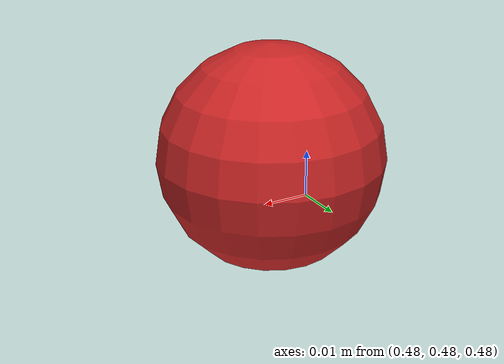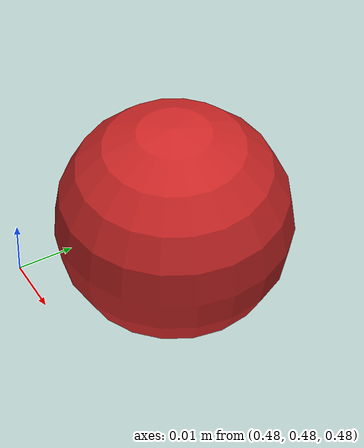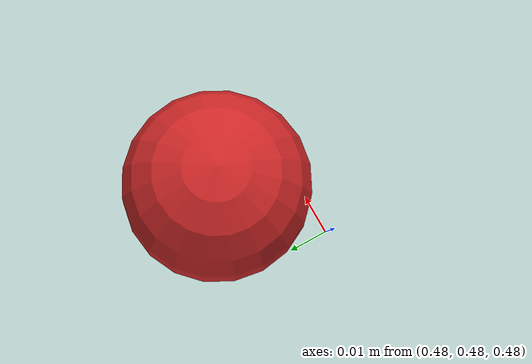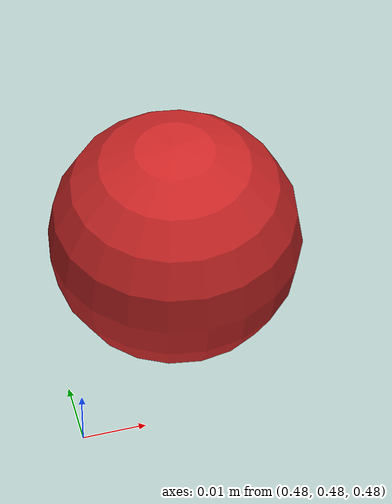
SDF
<?xml version="1.0"?>
<sdf version="1.6">
  <world name="tomato_world">
    <physics type="ode">
      <max_step_size>0.001</max_step_size>
      <real_time_update_rate>1000</real_time_update_rate>
      <real_time_factor>1.0</real_time_factor>
      <ode>
        <solver>
          <type>quick</type>
          <iters>50</iters>
        </solver>
        <constraints>
          <cfm>1e-5</cfm>
          <erp>0.8</erp>
        </constraints>
      </ode>
    </physics>
    <include>
      <uri>model://sun</uri>
    </include>
    <include>
      <uri>model://ground_plane</uri>
    </include>
    <model name="tomato">
      <static>false</static>
      <pose>0.5 0.5 0.5 0 0 0</pose>
      <link name="tomato_link">
        <gravity>0</gravity> <!-- 중력 비활성화 -->
        <visual name="tomato_visual">
          <geometry>
            <sphere>
              <radius>0.02</radius> <!-- 2cm로 변경 -->
            </sphere>
          </geometry>
          <material>
            <script>
              <uri>file://media/materials/scripts/gazebo.material</uri>
              <name>Gazebo/RedGlow</name>
            </script>
            <ambient>1 0 0 1</ambient>
            <diffuse>1 0 0 1</diffuse>
          </material>
        </visual>
        <collision name="tomato_collision">
          <geometry>
            <sphere>
              <radius>0.02</radius> <!-- 2cm로 변경 -->
            </sphere>
          </geometry>
        </collision>
        <inertial>
          <mass value="0.01"/> <!-- 크기 줄임에 맞춰 질량 감소 -->
          <inertia ixx="0.000008" ixy="0" ixz="0" iyy="0.000008" iyz="0" izz="0.000008"/> <!-- 관성 조정 -->
        </inertial>
      </link>
    </model>
  </world>
</sdf>
